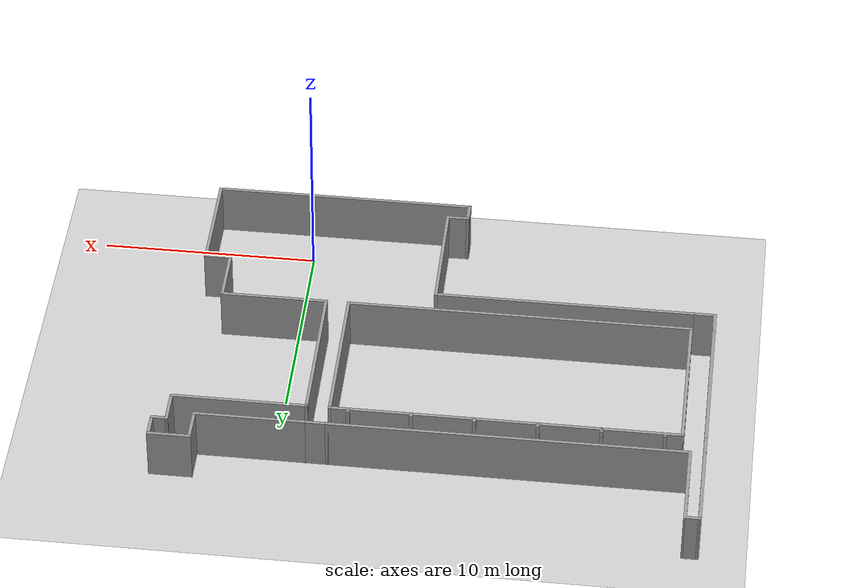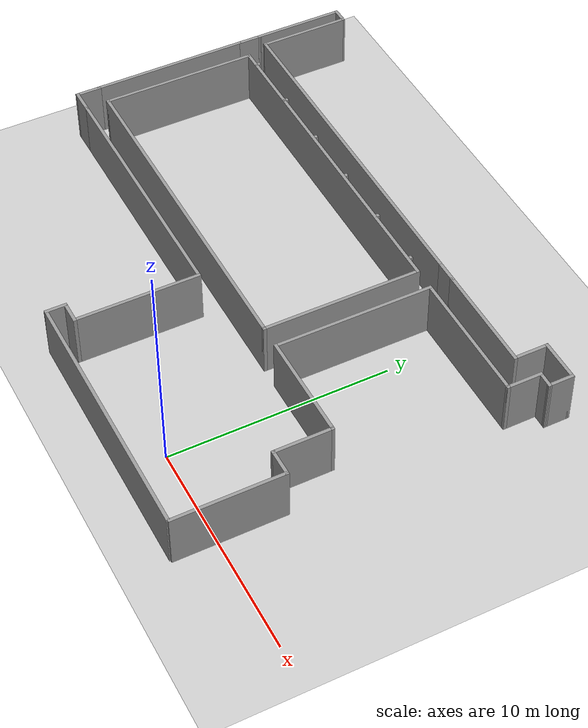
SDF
<sdf version="1.7">
 <world name="default">
  <model name="ground_plane">
   <static>1</static>
   <link name="link">
    <collision name="collision">
     <geometry><plane><normal>0 0 1</normal><size>100 100</size></plane></geometry>
     <surface>
      <contact><collide_bitmask>65535</collide_bitmask></contact>
      <friction><ode><mu>100</mu><mu2>50</mu2></ode></friction>
     </surface>
    </collision>
    <visual name="visual">
     <cast_shadows>0</cast_shadows>
     <geometry><plane><normal>0 0 1</normal><size>100 100</size></plane></geometry>
     <material>
      <script><uri>file://media/materials/scripts/gazebo.material</uri><name>Gazebo/Grey</name></script>
     </material>
    </visual>
   </link>
  </model>
  <model name="4f_new">
   <pose>-6.89501 7.93318 0 0 -0 0</pose>
   <link name="Wall_0">
    <collision name="Wall_0_Collision">
     <geometry><box><size>16 0.15 2.5</size></box></geometry>
     <pose>0 0 1.25 0 -0 0</pose>
    </collision>
    <visual name="Wall_0_Visual">
     <pose>0 0 1.25 0 -0 0</pose>
     <geometry><box><size>16 0.15 2.5</size></box></geometry>
     <material>
      <script><uri>file://media/materials/scripts/gazebo.material</uri><name>Gazebo/Grey</name></script>
      <ambient>1 1 1 1</ambient>
     </material>
     <meta><layer>0</layer></meta>
    </visual>
    <pose>-3.39549 4.70032 0 0 -0 0</pose>
   </link>
   <link name="Wall_2">
    <collision name="Wall_2_Collision">
     <geometry><box><size>7.25 0.15 2.5</size></box></geometry>
     <pose>0 0 1.25 0 -0 0</pose>
    </collision>
    <visual name="Wall_2_Visual">
     <pose>0 0 1.25 0 -0 0</pose>
     <geometry><box><size>7.25 0.15 2.5</size></box></geometry>
     <material>
      <script><uri>file://media/materials/scripts/gazebo.material</uri><name>Gazebo/Grey</name></script>
      <ambient>1 1 1 1</ambient>
     </material>
     <meta><layer>0</layer></meta>
    </visual>
    <pose>-11.3205 1.15032 0 0 -0 -1.5708</pose>
   </link>
   <link name="Wall_32">
    <collision name="Wall_32_Collision">
     <geometry><box><size>1.2 0.15 2.5</size></box></geometry>
     <pose>0 0 1.25 0 -0 0</pose>
    </collision>
    <visual name="Wall_32_Visual">
     <pose>0 0 1.25 0 -0 0</pose>
     <geometry><box><size>1.2 0.15 2.5</size></box></geometry>
     <material>
      <script><uri>file://media/materials/scripts/gazebo.material</uri><name>Gazebo/Grey</name></script>
      <ambient>1 1 1 1</ambient>
     </material>
     <meta><layer>0</layer></meta>
    </visual>
    <pose>5.05451 5.75032 0 0 -0 0</pose>
   </link>
   <link name="Wall_34">
    <collision name="Wall_34_Collision">
     <geometry><box><size>1.2 0.15 2.5</size></box></geometry>
     <pose>0 0 1.25 0 -0 0</pose>
    </collision>
    <visual name="Wall_34_Visual">
     <pose>0 0 1.25 0 -0 0</pose>
     <geometry><box><size>1.2 0.15 2.5</size></box></geometry>
     <material>
      <script><uri>file://media/materials/scripts/gazebo.material</uri><name>Gazebo/Grey</name></script>
      <ambient>1 1 1 1</ambient>
     </material>
     <meta><layer>0</layer></meta>
    </visual>
    <pose>-11.8455 -3.44968 0 0 -0 3.14159</pose>
   </link>
   <link name="Wall_38">
    <collision name="Wall_38_Collision">
     <geometry><box><size>12.05 0.15 2.5</size></box></geometry>
     <pose>0 0 1.25 0 -0 0</pose>
    </collision>
    <visual name="Wall_38_Visual">
     <pose>0 0 1.25 0 -0 0</pose>
     <geometry><box><size>12.05 0.15 2.5</size></box></geometry>
     <material>
      <script><uri>file://media/materials/scripts/gazebo.material</uri><name>Gazebo/Grey</name></script>
      <ambient>1 1 1 1</ambient>
     </material>
     <meta><layer>0</layer></meta>
    </visual>
    <pose>-5.37049 -3.44968 0 0 -0 0</pose>
   </link>
   <link name="Wall_4">
    <collision name="Wall_4_Collision">
     <geometry><box><size>16 0.15 2.5</size></box></geometry>
     <pose>0 0 1.25 0 -0 0</pose>
    </collision>
    <visual name="Wall_4_Visual">
     <pose>0 0 1.25 0 -0 0</pose>
     <geometry><box><size>16 0.15 2.5</size></box></geometry>
     <material>
      <script><uri>file://media/materials/scripts/gazebo.material</uri><name>Gazebo/Grey</name></script>
      <ambient>1 1 1 1</ambient>
     </material>
     <meta><layer>0</layer></meta>
    </visual>
    <pose>-3.39549 -2.39968 0 0 -0 0</pose>
   </link>
   <link name="Wall_40">
    <collision name="Wall_40_Collision">
     <geometry><box><size>16.3207 0.15 2.5</size></box></geometry>
     <pose>0 0 1.25 0 -0 0</pose>
    </collision>
    <visual name="Wall_40_Visual">
     <pose>0 0 1.25 0 -0 0</pose>
     <geometry><box><size>16.3207 0.15 2.5</size></box></geometry>
     <material>
      <script><uri>file://media/materials/scripts/gazebo.material</uri><name>Gazebo/Grey</name></script>
      <ambient>1 1 1 1</ambient>
     </material>
     <meta><layer>0</layer></meta>
    </visual>
    <pose>-3.55583 5.74997 0 0 -0 4.3e-05</pose>
   </link>
   <link name="Wall_42">
    <collision name="Wall_42_Collision">
     <geometry><box><size>7.25 0.15 2.5</size></box></geometry>
     <pose>0 0 1.25 0 -0 0</pose>
    </collision>
    <visual name="Wall_42_Visual">
     <pose>0 0 1.25 0 -0 0</pose>
     <geometry><box><size>7.25 0.15 2.5</size></box></geometry>
     <material>
      <script><uri>file://media/materials/scripts/gazebo.material</uri><name>Gazebo/Grey</name></script>
      <ambient>1 1 1 1</ambient>
     </material>
     <meta><layer>0</layer></meta>
    </visual>
    <pose>-12.3705 1.15032 0 0 -0 -1.5708</pose>
   </link>
   <link name="Wall_44">
    <collision name="Wall_44_Collision">
     <geometry><box><size>1.19931 0.15 2.5</size></box></geometry>
     <pose>0 0 1.25 0 -0 0</pose>
    </collision>
    <visual name="Wall_44_Visual">
     <pose>0 0 1.25 0 -0 0</pose>
     <geometry><box><size>1.19931 0.15 2.5</size></box></geometry>
     <material>
      <script><uri>file://media/materials/scripts/gazebo.material</uri><name>Gazebo/Grey</name></script>
      <ambient>1 1 1 1</ambient>
     </material>
     <meta><layer>0</layer></meta>
    </visual>
    <pose>-12.3695 5.22497 0 0 -0 -1.57265</pose>
   </link>
   <link name="Wall_46">
    <collision name="Wall_46_Collision">
     <geometry><box><size>1.2 0.15 2.5</size></box></geometry>
     <pose>0 0 1.25 0 -0 0</pose>
    </collision>
    <visual name="Wall_46_Visual">
     <pose>0 0 1.25 0 -0 0</pose>
     <geometry><box><size>1.2 0.15 2.5</size></box></geometry>
     <material>
      <script><uri>file://media/materials/scripts/gazebo.material</uri><name>Gazebo/Grey</name></script>
      <ambient>1 1 1 1</ambient>
     </material>
     <meta><layer>0</layer></meta>
    </visual>
    <pose>-12.3705 -2.92468 0 0 -0 -1.5708</pose>
   </link>
   <link name="Wall_52">
    <collision name="Wall_52_Collision">
     <geometry><box><size>7.25 0.15 2.5</size></box></geometry>
     <pose>0 0 1.25 0 -0 0</pose>
    </collision>
    <visual name="Wall_52_Visual">
     <pose>0 0 1.25 0 -0 0</pose>
     <geometry><box><size>7.25 0.15 2.5</size></box></geometry>
     <material>
      <script><uri>file://media/materials/scripts/gazebo.material</uri><name>Gazebo/Grey</name></script>
      <ambient>1 1 1 1</ambient>
     </material>
     <meta><layer>0</layer></meta>
    </visual>
    <pose>5.57951 1.15032 0 0 -0 -1.5708</pose>
   </link>
   <link name="Wall_54">
    <collision name="Wall_54_Collision">
     <geometry><box><size>4.25 0.15 2.5</size></box></geometry>
     <pose>0 0 1.25 0 -0 0</pose>
    </collision>
    <visual name="Wall_54_Visual">
     <pose>0 0 1.25 0 -0 0</pose>
     <geometry><box><size>4.25 0.15 2.5</size></box></geometry>
     <material>
      <script><uri>file://media/materials/scripts/gazebo.material</uri><name>Gazebo/Grey</name></script>
      <ambient>1 1 1 1</ambient>
     </material>
     <meta><layer>0</layer></meta>
    </visual>
    <pose>-12.3685 7.79962 0 0 -0 1.5708</pose>
   </link>
   <link name="Wall_58">
    <collision name="Wall_58_Collision">
     <geometry><box><size>4.24848 0.15 2.5</size></box></geometry>
     <pose>0 0 1.25 0 -0 0</pose>
    </collision>
    <visual name="Wall_58_Visual">
     <pose>0 0 1.25 0 -0 0</pose>
     <geometry><box><size>4.24848 0.15 2.5</size></box></geometry>
     <material>
      <script><uri>file://media/materials/scripts/gazebo.material</uri><name>Gazebo/Grey</name></script>
      <ambient>1 1 1 1</ambient>
     </material>
     <meta><layer>0</layer></meta>
    </visual>
    <pose>-11.7211 7.79985 0 0 -0 -1.57003</pose>
   </link>
   <link name="Wall_6">
    <collision name="Wall_6_Collision">
     <geometry><box><size>7.25 0.15 2.5</size></box></geometry>
     <pose>0 0 1.25 0 -0 0</pose>
    </collision>
    <visual name="Wall_6_Visual">
     <pose>0 0 1.25 0 -0 0</pose>
     <geometry><box><size>7.25 0.15 2.5</size></box></geometry>
     <material>
      <script><uri>file://media/materials/scripts/gazebo.material</uri><name>Gazebo/Grey</name></script>
      <ambient>1 1 1 1</ambient>
     </material>
     <meta><layer>0</layer></meta>
    </visual>
    <pose>4.52951 1.15032 0 0 -0 -1.5708</pose>
   </link>
   <link name="Wall_60">
    <collision name="Wall_60_Collision">
     <geometry><box><size>5.09 0.15 2.5</size></box></geometry>
     <pose>0 0 1.25 0 -0 0</pose>
    </collision>
    <visual name="Wall_60_Visual">
     <pose>0 0 1.25 0 -0 0</pose>
     <geometry><box><size>5.09 0.15 2.5</size></box></geometry>
     <material>
      <script><uri>file://media/materials/scripts/gazebo.material</uri><name>Gazebo/Grey</name></script>
      <ambient>1 1 1 1</ambient>
     </material>
     <meta><layer>0</layer></meta>
    </visual>
    <pose>8.04951 5.75032 0 0 -0 0</pose>
   </link>
   <link name="Wall_63">
    <collision name="Wall_63_Collision">
     <geometry><box><size>0.795906 0.15 2.5</size></box></geometry>
     <pose>0 0 1.25 0 -0 0</pose>
    </collision>
    <visual name="Wall_63_Visual">
     <pose>0 0 1.25 0 -0 0</pose>
     <geometry><box><size>0.795906 0.15 2.5</size></box></geometry>
     <material>
      <script><uri>file://media/materials/scripts/gazebo.material</uri><name>Gazebo/Grey</name></script>
      <ambient>1 1 1 1</ambient>
     </material>
     <meta><layer>0</layer></meta>
    </visual>
    <pose>-12.0456 9.84935 0 0 -0 -0.000837</pose>
   </link>
   <link name="Wall_65">
    <collision name="Wall_65_Collision">
     <geometry><box><size>5 0.15 2.5</size></box></geometry>
     <pose>0 0 1.25 0 -0 0</pose>
    </collision>
    <visual name="Wall_65_Visual">
     <pose>0 0 1.25 0 -0 0</pose>
     <geometry><box><size>5 0.15 2.5</size></box></geometry>
     <material>
      <script><uri>file://media/materials/scripts/gazebo.material</uri><name>Gazebo/Grey</name></script>
      <ambient>1 1 1 1</ambient>
     </material>
     <meta><layer>0</layer></meta>
    </visual>
    <pose>8.00451 -2.39968 0 0 -0 0</pose>
   </link>
   <link name="Wall_67">
    <collision name="Wall_67_Collision">
     <geometry><box><size>2.7 0.15 2.5</size></box></geometry>
     <pose>0 0 1.25 0 -0 0</pose>
    </collision>
    <visual name="Wall_67_Visual">
     <pose>0 0 1.25 0 -0 0</pose>
     <geometry><box><size>2.7 0.15 2.5</size></box></geometry>
     <material>
      <script><uri>file://media/materials/scripts/gazebo.material</uri><name>Gazebo/Grey</name></script>
      <ambient>1 1 1 1</ambient>
     </material>
     <meta><layer>0</layer></meta>
    </visual>
    <pose>10.4295 -3.67468 0 0 -0 -1.5708</pose>
   </link>
   <link name="Wall_69">
    <collision name="Wall_69_Collision">
     <geometry><box><size>1.3 0.15 2.5</size></box></geometry>
     <pose>0 0 1.25 0 -0 0</pose>
    </collision>
    <visual name="Wall_69_Visual">
     <pose>0 0 1.25 0 -0 0</pose>
     <geometry><box><size>1.3 0.15 2.5</size></box></geometry>
     <material>
      <script><uri>file://media/materials/scripts/gazebo.material</uri><name>Gazebo/Grey</name></script>
      <ambient>1 1 1 1</ambient>
     </material>
     <meta><layer>0</layer></meta>
    </visual>
    <pose>11.0045 -4.94968 0 0 -0 0</pose>
   </link>
   <link name="Wall_71">
    <collision name="Wall_71_Collision">
     <geometry><box><size>5 0.15 2.5</size></box></geometry>
     <pose>0 0 1.25 0 -0 0</pose>
    </collision>
    <visual name="Wall_71_Visual">
     <pose>0 0 1.25 0 -0 0</pose>
     <geometry><box><size>5 0.15 2.5</size></box></geometry>
     <material>
      <script><uri>file://media/materials/scripts/gazebo.material</uri><name>Gazebo/Grey</name></script>
      <ambient>1 1 1 1</ambient>
     </material>
     <meta><layer>0</layer></meta>
    </visual>
    <pose>11.5795 -7.37468 0 0 -0 -1.5708</pose>
   </link>
   <link name="Wall_73">
    <collision name="Wall_73_Collision">
     <geometry><box><size>5.7 0.15 2.5</size></box></geometry>
     <pose>0 0 1.25 0 -0 0</pose>
    </collision>
    <visual name="Wall_73_Visual">
     <pose>0 0 1.25 0 -0 0</pose>
     <geometry><box><size>5.7 0.15 2.5</size></box></geometry>
     <material>
      <script><uri>file://media/materials/scripts/gazebo.material</uri><name>Gazebo/Grey</name></script>
      <ambient>1 1 1 1</ambient>
     </material>
     <meta><layer>0</layer></meta>
    </visual>
    <pose>0.579506 -6.22468 0 0 -0 -1.5708</pose>
   </link>
   <link name="Wall_75">
    <collision name="Wall_75_Collision">
     <geometry><box><size>1.1 0.15 2.5</size></box></geometry>
     <pose>0 0 1.25 0 -0 0</pose>
    </collision>
    <visual name="Wall_75_Visual">
     <pose>0 0 1.25 0 -0 0</pose>
     <geometry><box><size>1.1 0.15 2.5</size></box></geometry>
     <material>
      <script><uri>file://media/materials/scripts/gazebo.material</uri><name>Gazebo/Grey</name></script>
      <ambient>1 1 1 1</ambient>
     </material>
     <meta><layer>0</layer></meta>
    </visual>
    <pose>0.104506 -8.99968 0 0 -0 3.14159</pose>
   </link>
   <link name="Wall_77">
    <collision name="Wall_77_Collision">
     <geometry><box><size>1 0.15 2.5</size></box></geometry>
     <pose>0 0 1.25 0 -0 0</pose>
    </collision>
    <visual name="Wall_77_Visual">
     <pose>0 0 1.25 0 -0 0</pose>
     <geometry><box><size>1 0.15 2.5</size></box></geometry>
     <material>
      <script><uri>file://media/materials/scripts/gazebo.material</uri><name>Gazebo/Grey</name></script>
      <ambient>1 1 1 1</ambient>
     </material>
     <meta><layer>0</layer></meta>
    </visual>
    <pose>-0.370494 -9.42468 0 0 -0 -1.5708</pose>
   </link>
   <link name="Wall_79">
    <collision name="Wall_79_Collision">
     <geometry><box><size>12 0.15 2.5</size></box></geometry>
     <pose>0 0 1.25 0 -0 0</pose>
    </collision>
    <visual name="Wall_79_Visual">
     <pose>0 0 1.25 0 -0 0</pose>
     <geometry><box><size>12 0.15 2.5</size></box></geometry>
     <material>
      <script><uri>file://media/materials/scripts/gazebo.material</uri><name>Gazebo/Grey</name></script>
      <ambient>1 1 1 1</ambient>
     </material>
     <meta><layer>0</layer></meta>
    </visual>
    <pose>5.55451 -9.84968 0 0 -0 0</pose>
   </link>
   <link name="Wall_81">
    <collision name="Wall_81_Collision">
     <geometry><box><size>1.64 0.15 2.5</size></box></geometry>
     <pose>0 0 1.25 0 -0 0</pose>
    </collision>
    <visual name="Wall_81_Visual">
     <pose>0 0 1.25 0 -0 0</pose>
     <geometry><box><size>1.64 0.15 2.5</size></box></geometry>
     <material>
      <script><uri>file://media/materials/scripts/gazebo.material</uri><name>Gazebo/Grey</name></script>
      <ambient>1 1 1 1</ambient>
     </material>
     <meta><layer>0</layer></meta>
    </visual>
    <pose>10.5195 6.49532 0 0 -0 1.5708</pose>
   </link>
   <link name="Wall_85">
    <collision name="Wall_85_Collision">
     <geometry><box><size>6.28 0.15 2.5</size></box></geometry>
     <pose>0 0 1.25 0 -0 0</pose>
    </collision>
    <visual name="Wall_85_Visual">
     <pose>0 0 1.25 0 -0 0</pose>
     <geometry><box><size>6.28 0.15 2.5</size></box></geometry>
     <material>
      <script><uri>file://media/materials/scripts/gazebo.material</uri><name>Gazebo/Grey</name></script>
      <ambient>1 1 1 1</ambient>
     </material>
     <meta><layer>0</layer></meta>
    </visual>
    <pose>8.64451 4.70032 0 0 -0 0</pose>
   </link>
   <link name="Wall_87">
    <collision name="Wall_87_Collision">
     <geometry><box><size>2 0.15 2.5</size></box></geometry>
     <pose>0 0 1.25 0 -0 0</pose>
    </collision>
    <visual name="Wall_87_Visual">
     <pose>0 0 1.25 0 -0 0</pose>
     <geometry><box><size>2 0.15 2.5</size></box></geometry>
     <material>
      <script><uri>file://media/materials/scripts/gazebo.material</uri><name>Gazebo/Grey</name></script>
      <ambient>1 1 1 1</ambient>
     </material>
     <meta><layer>0</layer></meta>
    </visual>
    <pose>11.4445 7.24032 0 0 -0 0</pose>
   </link>
   <link name="Wall_89">
    <collision name="Wall_89_Collision">
     <geometry><box><size>1.65 0.15 2.5</size></box></geometry>
     <pose>0 0 1.25 0 -0 0</pose>
    </collision>
    <visual name="Wall_89_Visual">
     <pose>0 0 1.25 0 -0 0</pose>
     <geometry><box><size>1.65 0.15 2.5</size></box></geometry>
     <material>
      <script><uri>file://media/materials/scripts/gazebo.material</uri><name>Gazebo/Grey</name></script>
      <ambient>1 1 1 1</ambient>
     </material>
     <meta><layer>0</layer></meta>
    </visual>
    <pose>11.7095 5.45032 0 0 -0 1.5708</pose>
   </link>
   <link name="Wall_91">
    <collision name="Wall_91_Collision">
     <geometry><box><size>1.2 0.15 2.5</size></box></geometry>
     <pose>0 0 1.25 0 -0 0</pose>
    </collision>
    <visual name="Wall_91_Visual">
     <pose>0 0 1.25 0 -0 0</pose>
     <geometry><box><size>1.2 0.15 2.5</size></box></geometry>
     <material>
      <script><uri>file://media/materials/scripts/gazebo.material</uri><name>Gazebo/Grey</name></script>
      <ambient>1 1 1 1</ambient>
     </material>
     <meta><layer>0</layer></meta>
    </visual>
    <pose>12.3695 6.71532 0 0 -0 -1.5708</pose>
   </link>
   <link name="Wall_93">
    <collision name="Wall_93_Collision">
     <geometry><box><size>0.810076 0.15 2.5</size></box></geometry>
     <pose>0 0 1.25 0 -0 0</pose>
    </collision>
    <visual name="Wall_93_Visual">
     <pose>0 0 1.25 0 -0 0</pose>
     <geometry><box><size>0.810076 0.15 2.5</size></box></geometry>
     <material>
      <script><uri>file://media/materials/scripts/gazebo.material</uri><name>Gazebo/Grey</name></script>
      <ambient>1 1 1 1</ambient>
     </material>
     <meta><layer>0</layer></meta>
    </visual>
    <pose>12.0395 6.19532 0 0 -0 3.12644</pose>
   </link>
   <static>1</static>
  </model>
  <model name=" width_clone">
   <pose>-10.3312 12.7473 0 0 -0 0</pose>
   <link name="Wall_38">
    <collision name="Wall_38_Collision">
     <geometry><box><size>0.25 0.15 2.5</size></box></geometry>
     <pose>0 0 1.25 0 -0 0</pose>
    </collision>
    <visual name="Wall_38_Visual">
     <pose>0 0 1.25 0 -0 0</pose>
     <geometry><box><size>0.25 0.15 2.5</size></box></geometry>
     <material>
      <script><uri>file://media/materials/scripts/gazebo.material</uri><name>Gazebo/Grey</name></script>
      <ambient>1 1 1 1</ambient>
     </material>
     <meta><layer>0</layer></meta>
    </visual>
    <pose>-7.125 -0.033952 0 0 -0 1.5708</pose>
   </link>
   <link name="Wall_40">
    <collision name="Wall_40_Collision">
     <geometry><box><size>0.25 0.15 2.5</size></box></geometry>
     <pose>0 0 1.25 0 -0 0</pose>
    </collision>
    <visual name="Wall_40_Visual">
     <pose>0 0 1.25 0 -0 0</pose>
     <geometry><box><size>0.25 0.15 2.5</size></box></geometry>
     <material>
      <script><uri>file://media/materials/scripts/gazebo.material</uri><name>Gazebo/Grey</name></script>
      <ambient>1 1 1 1</ambient>
     </material>
     <meta><layer>0</layer></meta>
    </visual>
    <pose>-4.275 -0.033952 0 0 -0 1.5708</pose>
   </link>
   <link name="Wall_42">
    <collision name="Wall_42_Collision">
     <geometry><box><size>0.25 0.15 2.5</size></box></geometry>
     <pose>0 0 1.25 0 -0 0</pose>
    </collision>
    <visual name="Wall_42_Visual">
     <pose>0 0 1.25 0 -0 0</pose>
     <geometry><box><size>0.25 0.15 2.5</size></box></geometry>
     <material>
      <script><uri>file://media/materials/scripts/gazebo.material</uri><name>Gazebo/Grey</name></script>
      <ambient>1 1 1 1</ambient>
     </material>
     <meta><layer>0</layer></meta>
    </visual>
    <pose>-1.425 -0.033952 0 0 -0 1.5708</pose>
   </link>
   <link name="Wall_44">
    <collision name="Wall_44_Collision">
     <geometry><box><size>0.25 0.15 2.5</size></box></geometry>
     <pose>0 0 1.25 0 -0 0</pose>
    </collision>
    <visual name="Wall_44_Visual">
     <pose>0 0 1.25 0 -0 0</pose>
     <geometry><box><size>0.25 0.15 2.5</size></box></geometry>
     <material>
      <script><uri>file://media/materials/scripts/gazebo.material</uri><name>Gazebo/Grey</name></script>
      <ambient>1 1 1 1</ambient>
     </material>
     <meta><layer>0</layer></meta>
    </visual>
    <pose>1.425 -0.033952 0 0 -0 1.5708</pose>
   </link>
   <link name="Wall_48">
    <collision name="Wall_48_Collision">
     <geometry><box><size>0.25 0.15 2.5</size></box></geometry>
     <pose>0 0 1.25 0 -0 0</pose>
    </collision>
    <visual name="Wall_48_Visual">
     <pose>0 0 1.25 0 -0 0</pose>
     <geometry><box><size>0.25 0.15 2.5</size></box></geometry>
     <material>
      <script><uri>file://media/materials/scripts/gazebo.material</uri><name>Gazebo/Grey</name></script>
      <ambient>1 1 1 1</ambient>
     </material>
     <meta><layer>0</layer></meta>
    </visual>
    <pose>4.275 -0.033952 0 0 -0 1.5708</pose>
   </link>
   <link name="Wall_50">
    <collision name="Wall_50_Collision">
     <geometry><box><size>0.25 0.15 2.5</size></box></geometry>
     <pose>0 0 1.25 0 -0 0</pose>
    </collision>
    <visual name="Wall_50_Visual">
     <pose>0 0 1.25 0 -0 0</pose>
     <geometry><box><size>0.25 0.15 2.5</size></box></geometry>
     <material>
      <script><uri>file://media/materials/scripts/gazebo.material</uri><name>Gazebo/Grey</name></script>
      <ambient>1 1 1 1</ambient>
     </material>
     <meta><layer>0</layer></meta>
    </visual>
    <pose>7.125 -0.033952 0 0 -0 1.5708</pose>
   </link>
   <static>1</static>
  </model>
 </world>
</sdf>
